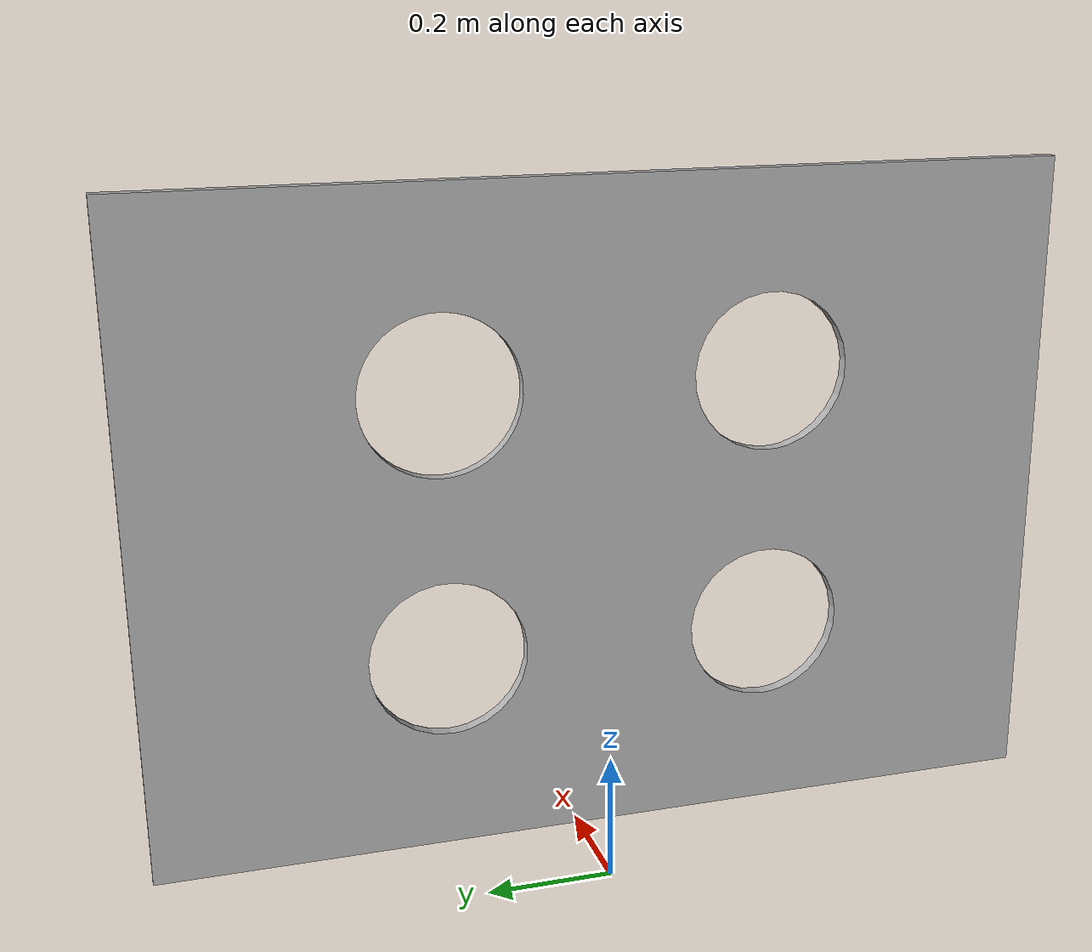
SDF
<?xml version='1.0'?>
<sdf version='1.6'>
  <model name="calibration_whiteqr_pattern">
      <pose>0 0 0.6 0 0 0</pose>
      <static>true</static>
      <link name="body">
        <visual name="visual">
			<pose>0 0 0 0 0 0</pose>
			  <geometry>
				<mesh><uri>model://calibration_whiteqr_pattern/meshes/whitebig.dae</uri></mesh>
			  </geometry>
		</visual>
		  <collision name="collision">
			<pose>0 0 0  0 0 0</pose>
			  <geometry>
				<mesh><uri>model://calibration_whiteqr_pattern/meshes/whitebig.stl</uri></mesh>
			  </geometry>
		  </collision>
      </link>
    </model>
</sdf>
